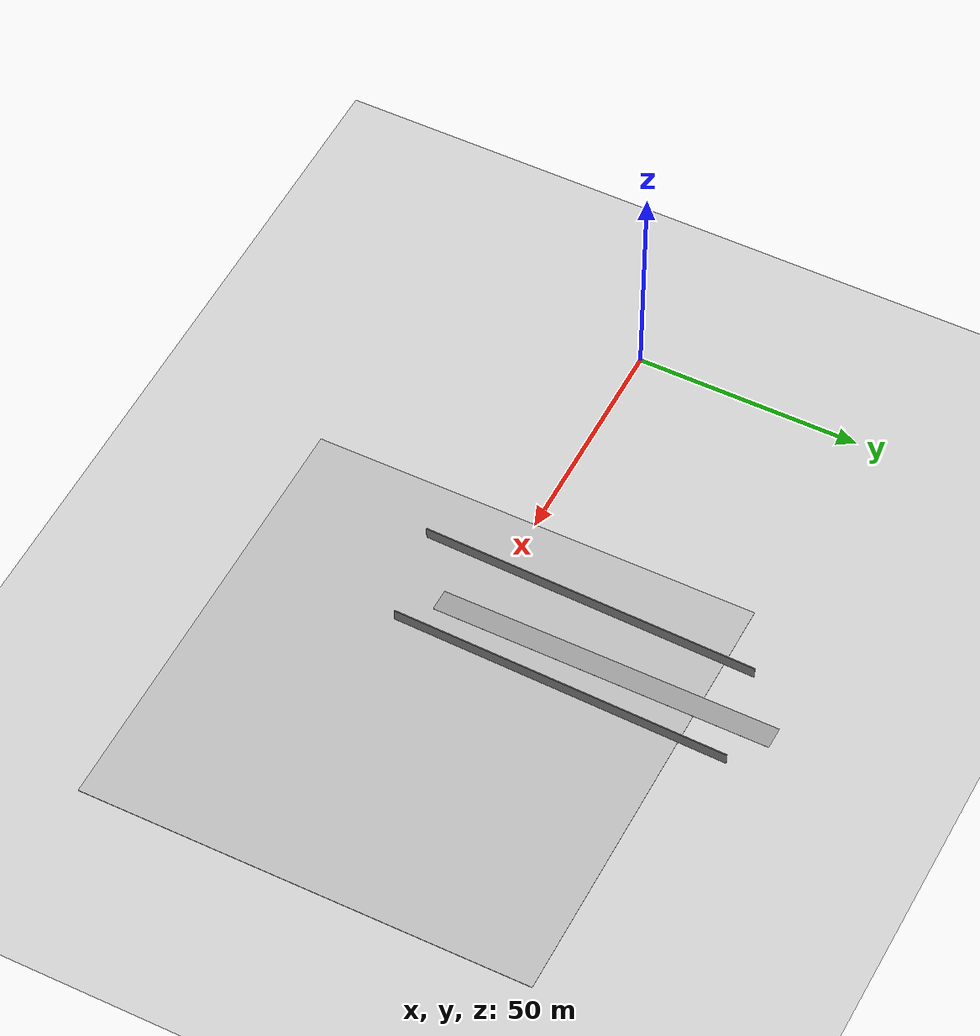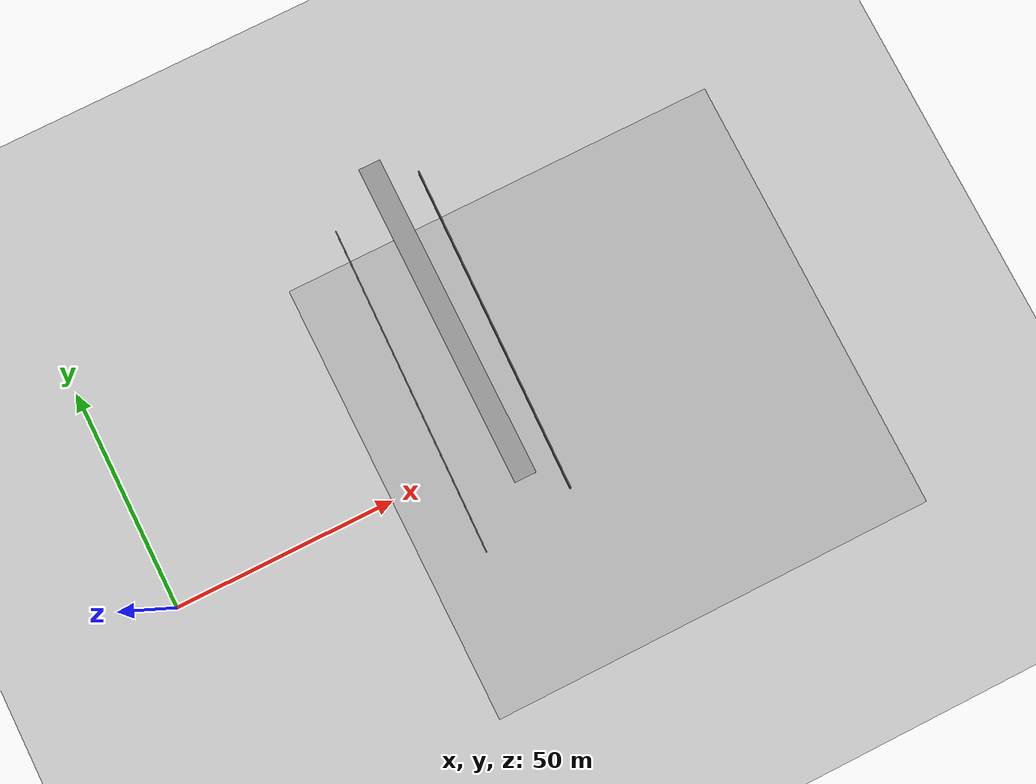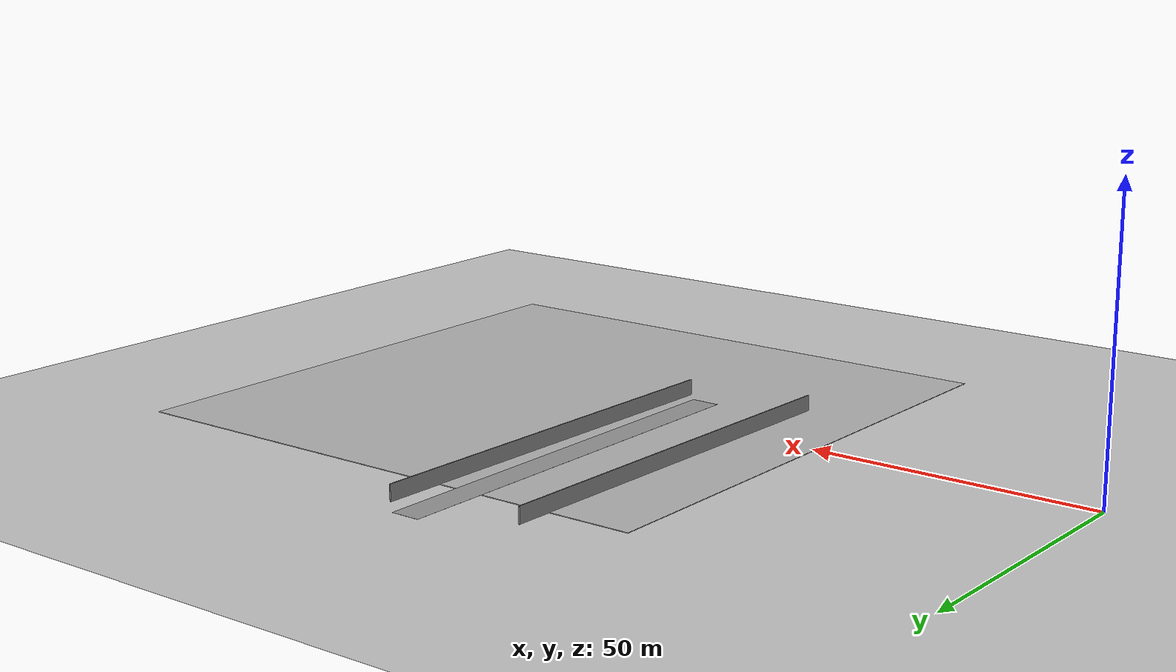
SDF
<sdf version="1.6">
 <world name="default">
  <model name="ground1">
   <static>1</static>
   <link name="link">
    <collision name="collision">
     <geometry><plane><normal>0 0 1</normal><size>100 100</size></plane></geometry>
     <surface><friction><ode><mu>100</mu><mu2>50</mu2></ode></friction></surface>
    </collision>
    <visual name="visual">
     <cast_shadows>0</cast_shadows>
     <geometry><plane><normal>0 0 1</normal><size>100 100</size></plane></geometry>
     <material>
      <script>
       <uri>model://ground1/materials/scripts</uri>
       <uri>model://ground1/materials/textures/</uri>
       <name>ground1/Image</name>
      </script>
     </material>
    </visual>
   </link>
  </model>
  <model name="ground1_0">
   <static>1</static>
   <link name="link">
    <collision name="collision">
     <geometry><plane><normal>0 0 1</normal><size>100 100</size></plane></geometry>
     <surface><friction><ode><mu>100</mu><mu2>50</mu2></ode></friction></surface>
    </collision>
    <visual name="visual">
     <cast_shadows>0</cast_shadows>
     <geometry><plane><normal>0 0 1</normal><size>100 100</size></plane></geometry>
     <material>
      <script>
       <uri>model://ground1/materials/scripts</uri>
       <uri>model://ground1/materials/textures/</uri>
       <name>ground1/Image</name>
      </script>
     </material>
    </visual>
   </link>
   <pose>99.6657 -0.19904 0 0 -0 0</pose>
  </model>
  <model name="grey_wall2_3_clone_4">
   <static>1</static>
   <link name="link">
    <pose>0 0 1.4 0 -0 0</pose>
    <collision name="collision"><geometry><box><size>75 5 0.01</size></box></geometry></collision>
    <visual name="visual">
     <cast_shadows>0</cast_shadows>
     <geometry><box><size>75 5 0.01</size></box></geometry>
     <material>
      <script>
       <uri>model://grey_wall/materials/scripts</uri>
       <uri>model://grey_wall/materials/textures</uri>
       <name>vrc/grey_wall</name>
      </script>
     </material>
    </visual>
   </link>
   <pose>76.9178 29.2529 0 0 0 -1.57442</pose>
  </model>
  <model name="grey_wall_clone_clone_0_clone_7">
   <static>1</static>
   <link name="link">
    <pose>0 0 1.4 0 -0 0</pose>
    <collision name="collision"><geometry><box><size>75 0.2 2.8</size></box></geometry></collision>
    <visual name="visual">
     <cast_shadows>0</cast_shadows>
     <geometry><box><size>75 0.2 2.8</size></box></geometry>
     <material>
      <script>
       <uri>model://grey_wall/materials/scripts</uri>
       <uri>model://grey_wall/materials/textures</uri>
       <name>vrc/grey_wall</name>
      </script>
     </material>
    </visual>
   </link>
   <pose>85 23 0 0 0 -1.59331</pose>
  </model>
  <model name="grey_wall_clone_clone_0_clone_10">
   <static>1</static>
   <link name="link">
    <pose>0 0 1.4 0 -0 0</pose>
    <collision name="collision"><geometry><box><size>75 0.2 2.8</size></box></geometry></collision>
    <visual name="visual">
     <cast_shadows>0</cast_shadows>
     <geometry><box><size>75 0.2 2.8</size></box></geometry>
     <material>
      <script>
       <uri>model://grey_wall/materials/scripts</uri>
       <uri>model://grey_wall/materials/textures</uri>
       <name>vrc/grey_wall</name>
      </script>
     </material>
    </visual>
   </link>
   <pose>63.4302 19.0163 0 0 0 -1.59331</pose>
  </model>
 </world>
</sdf>
